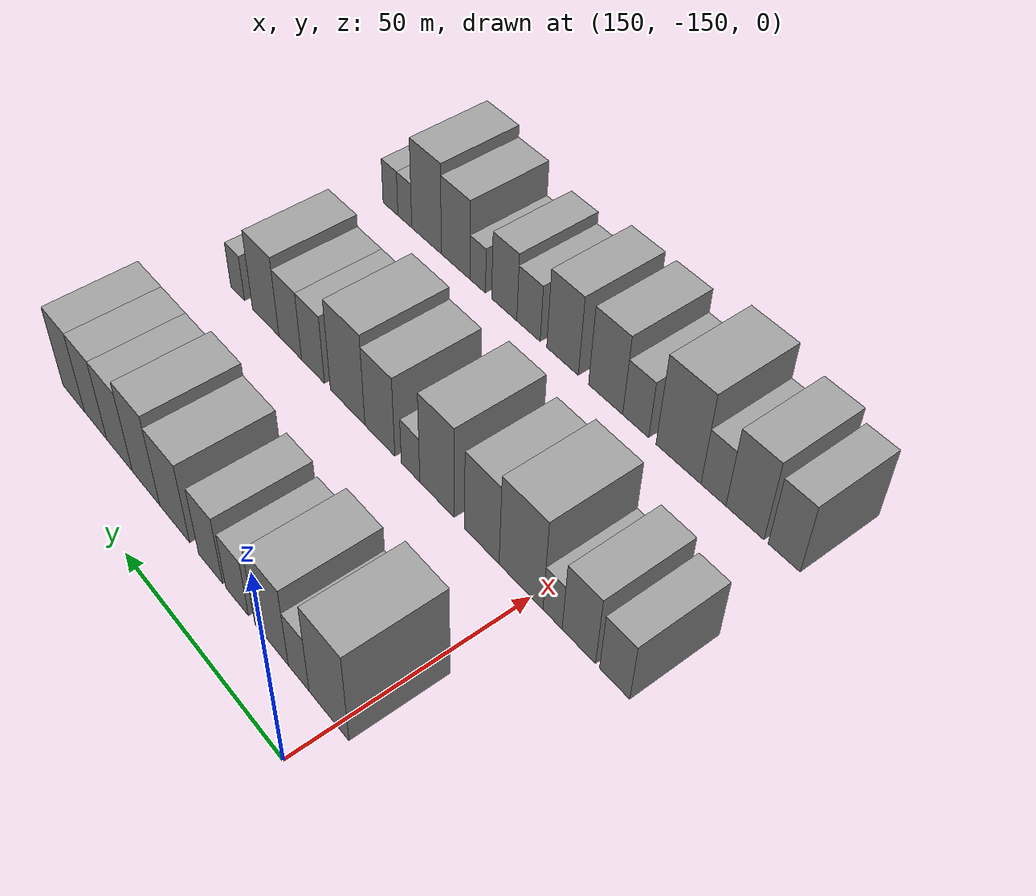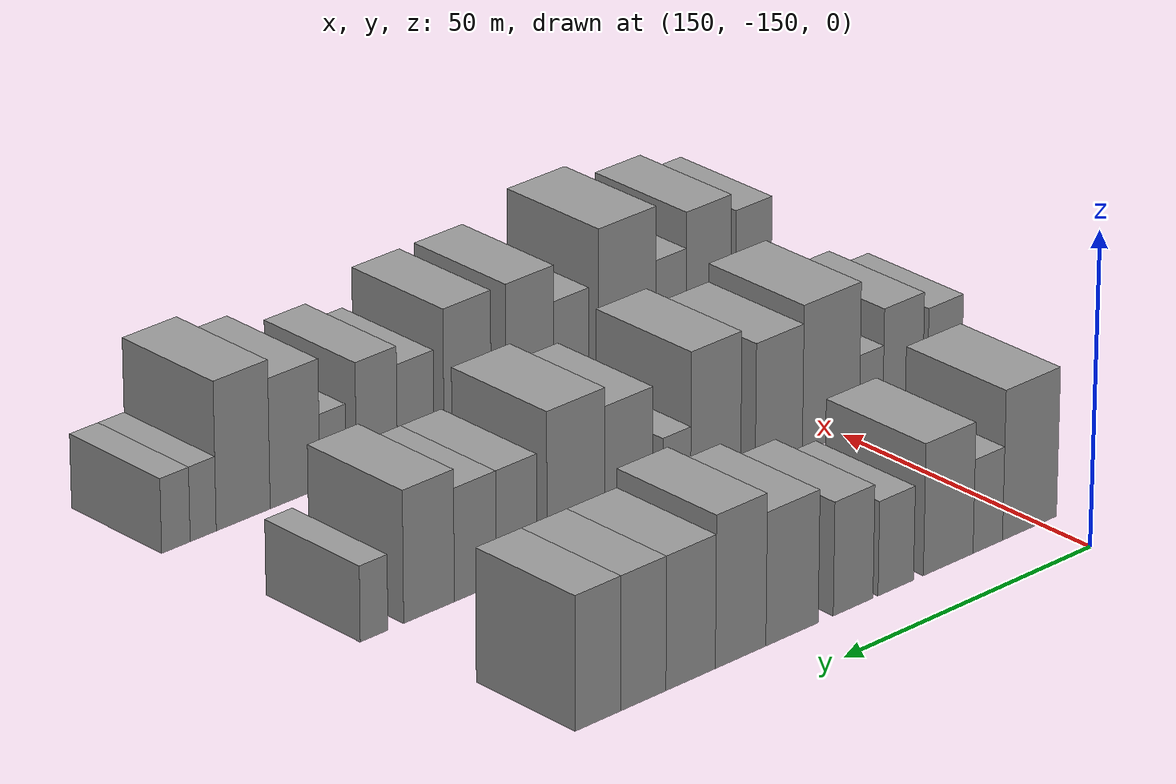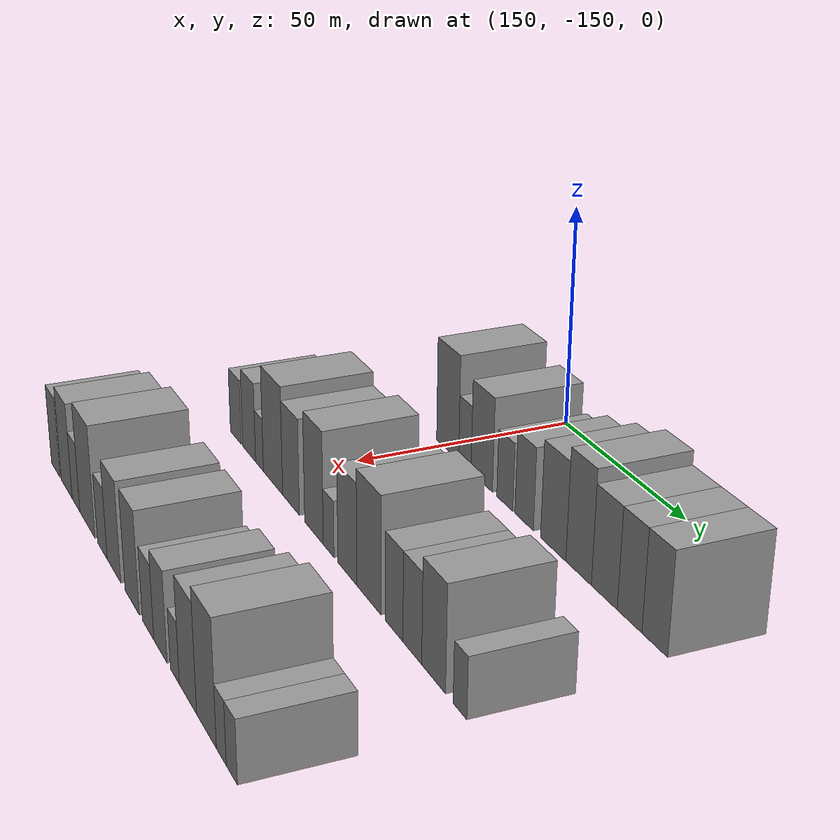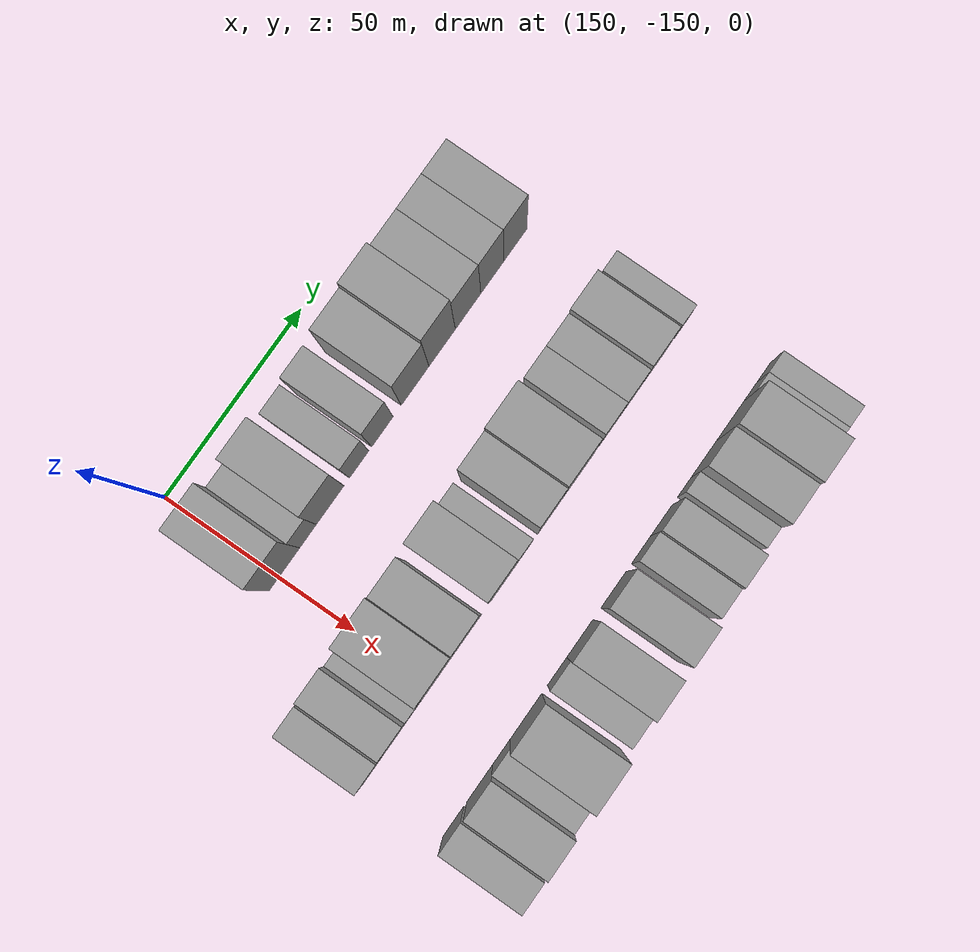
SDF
<sdf version="1.6">
 <world name="default">
  <model name="building_452">
   <static>1</static>
   <pose>170.0000 -147.8271 0 0.000000 0.000000 0.000000</pose>
   <link name="link">
    <pose>0 0 12.00 0 0 0</pose>
    <collision name="collision"><geometry><box><size>20.0000 11.2474 24.0000</size></box></geometry></collision>
    <visual name="visual">
     <cast_shadows>0</cast_shadows>
     <geometry><box><size>20.0000 11.2474 24.0000</size></box></geometry>
     <material>
      <script>
       <uri>model://grey_wall/materials/scripts</uri>
       <uri>model://grey_wall/materials/textures</uri>
       <name>vrc/grey_wall</name>
      </script>
     </material>
    </visual>
   </link>
  </model>
  <model name="building_453">
   <static>1</static>
   <pose>170.0000 -139.1607 0 0.000000 0.000000 0.000000</pose>
   <link name="link">
    <pose>0 0 7.50 0 0 0</pose>
    <collision name="collision"><geometry><box><size>20.0000 6.0854 15.0000</size></box></geometry></collision>
    <visual name="visual">
     <cast_shadows>0</cast_shadows>
     <geometry><box><size>20.0000 6.0854 15.0000</size></box></geometry>
     <material>
      <script>
       <uri>model://grey_wall/materials/scripts</uri>
       <uri>model://grey_wall/materials/textures</uri>
       <name>vrc/grey_wall</name>
      </script>
     </material>
    </visual>
   </link>
  </model>
  <model name="building_454">
   <static>1</static>
   <pose>170.0000 -131.0280 0 0.000000 0.000000 0.000000</pose>
   <link name="link">
    <pose>0 0 10.50 0 0 0</pose>
    <collision name="collision"><geometry><box><size>20.0000 10.1801 21.0000</size></box></geometry></collision>
    <visual name="visual">
     <cast_shadows>0</cast_shadows>
     <geometry><box><size>20.0000 10.1801 21.0000</size></box></geometry>
     <material>
      <script>
       <uri>model://grey_wall/materials/scripts</uri>
       <uri>model://grey_wall/materials/textures</uri>
       <name>vrc/grey_wall</name>
      </script>
     </material>
    </visual>
   </link>
  </model>
  <model name="building_455">
   <static>1</static>
   <pose>170.0000 -120.3381 0 0.000000 0.000000 0.000000</pose>
   <link name="link">
    <pose>0 0 7.50 0 0 0</pose>
    <collision name="collision"><geometry><box><size>20.0000 7.1998 15.0000</size></box></geometry></collision>
    <visual name="visual">
     <cast_shadows>0</cast_shadows>
     <geometry><box><size>20.0000 7.1998 15.0000</size></box></geometry>
     <material>
      <script>
       <uri>model://grey_wall/materials/scripts</uri>
       <uri>model://grey_wall/materials/textures</uri>
       <name>vrc/grey_wall</name>
      </script>
     </material>
    </visual>
   </link>
  </model>
  <model name="building_456">
   <static>1</static>
   <pose>170.0000 -111.7457 0 0.000000 0.000000 0.000000</pose>
   <link name="link">
    <pose>0 0 9.00 0 0 0</pose>
    <collision name="collision"><geometry><box><size>20.0000 7.9849 18.0000</size></box></geometry></collision>
    <visual name="visual">
     <cast_shadows>0</cast_shadows>
     <geometry><box><size>20.0000 7.9849 18.0000</size></box></geometry>
     <material>
      <script>
       <uri>model://grey_wall/materials/scripts</uri>
       <uri>model://grey_wall/materials/textures</uri>
       <name>vrc/grey_wall</name>
      </script>
     </material>
    </visual>
   </link>
  </model>
  <model name="building_457">
   <static>1</static>
   <pose>170.0000 -99.5709 0 0.000000 0.000000 0.000000</pose>
   <link name="link">
    <pose>0 0 10.50 0 0 0</pose>
    <collision name="collision"><geometry><box><size>20.0000 10.3647 21.0000</size></box></geometry></collision>
    <visual name="visual">
     <cast_shadows>0</cast_shadows>
     <geometry><box><size>20.0000 10.3647 21.0000</size></box></geometry>
     <material>
      <script>
       <uri>model://grey_wall/materials/scripts</uri>
       <uri>model://grey_wall/materials/textures</uri>
       <name>vrc/grey_wall</name>
      </script>
     </material>
    </visual>
   </link>
  </model>
  <model name="building_458">
   <static>1</static>
   <pose>170.0000 -89.4409 0 0.000000 0.000000 0.000000</pose>
   <link name="link">
    <pose>0 0 12.00 0 0 0</pose>
    <collision name="collision"><geometry><box><size>20.0000 9.8952 24.0000</size></box></geometry></collision>
    <visual name="visual">
     <cast_shadows>0</cast_shadows>
     <geometry><box><size>20.0000 9.8952 24.0000</size></box></geometry>
     <material>
      <script>
       <uri>model://grey_wall/materials/scripts</uri>
       <uri>model://grey_wall/materials/textures</uri>
       <name>vrc/grey_wall</name>
      </script>
     </material>
    </visual>
   </link>
  </model>
  <model name="building_459">
   <static>1</static>
   <pose>170.0000 -79.7046 0 0.000000 0.000000 0.000000</pose>
   <link name="link">
    <pose>0 0 10.50 0 0 0</pose>
    <collision name="collision"><geometry><box><size>20.0000 9.5773 21.0000</size></box></geometry></collision>
    <visual name="visual">
     <cast_shadows>0</cast_shadows>
     <geometry><box><size>20.0000 9.5773 21.0000</size></box></geometry>
     <material>
      <script>
       <uri>model://grey_wall/materials/scripts</uri>
       <uri>model://grey_wall/materials/textures</uri>
       <name>vrc/grey_wall</name>
      </script>
     </material>
    </visual>
   </link>
  </model>
  <model name="building_460">
   <static>1</static>
   <pose>170.0000 -70.5731 0 0.000000 0.000000 0.000000</pose>
   <link name="link">
    <pose>0 0 10.50 0 0 0</pose>
    <collision name="collision"><geometry><box><size>20.0000 8.6857 21.0000</size></box></geometry></collision>
    <visual name="visual">
     <cast_shadows>0</cast_shadows>
     <geometry><box><size>20.0000 8.6857 21.0000</size></box></geometry>
     <material>
      <script>
       <uri>model://grey_wall/materials/scripts</uri>
       <uri>model://grey_wall/materials/textures</uri>
       <name>vrc/grey_wall</name>
      </script>
     </material>
    </visual>
   </link>
  </model>
  <model name="building_461">
   <static>1</static>
   <pose>170.0000 -61.8903 0 0.000000 0.000000 0.000000</pose>
   <link name="link">
    <pose>0 0 10.50 0 0 0</pose>
    <collision name="collision"><geometry><box><size>20.0000 8.6798 21.0000</size></box></geometry></collision>
    <visual name="visual">
     <cast_shadows>0</cast_shadows>
     <geometry><box><size>20.0000 8.6798 21.0000</size></box></geometry>
     <material>
      <script>
       <uri>model://grey_wall/materials/scripts</uri>
       <uri>model://grey_wall/materials/textures</uri>
       <name>vrc/grey_wall</name>
      </script>
     </material>
    </visual>
   </link>
  </model>
  <model name="building_590">
   <static>1</static>
   <pose>210.0000 -171.2102 0 0.000000 0.000000 0.000000</pose>
   <link name="link">
    <pose>0 0 7.50 0 0 0</pose>
    <collision name="collision"><geometry><box><size>20.0000 7.3509 15.0000</size></box></geometry></collision>
    <visual name="visual">
     <cast_shadows>0</cast_shadows>
     <geometry><box><size>20.0000 7.3509 15.0000</size></box></geometry>
     <material>
      <script>
       <uri>model://grey_wall/materials/scripts</uri>
       <uri>model://grey_wall/materials/textures</uri>
       <name>vrc/grey_wall</name>
      </script>
     </material>
    </visual>
   </link>
  </model>
  <model name="building_591">
   <static>1</static>
   <pose>210.0000 -162.3197 0 0.000000 0.000000 0.000000</pose>
   <link name="link">
    <pose>0 0 9.00 0 0 0</pose>
    <collision name="collision"><geometry><box><size>20.0000 8.4302 18.0000</size></box></geometry></collision>
    <visual name="visual">
     <cast_shadows>0</cast_shadows>
     <geometry><box><size>20.0000 8.4302 18.0000</size></box></geometry>
     <material>
      <script>
       <uri>model://grey_wall/materials/scripts</uri>
       <uri>model://grey_wall/materials/textures</uri>
       <name>vrc/grey_wall</name>
      </script>
     </material>
    </visual>
   </link>
  </model>
  <model name="building_592">
   <static>1</static>
   <pose>210.0000 -155.6208 0 0.000000 0.000000 0.000000</pose>
   <link name="link">
    <pose>0 0 6.00 0 0 0</pose>
    <collision name="collision"><geometry><box><size>20.0000 4.9674 12.0000</size></box></geometry></collision>
    <visual name="visual">
     <cast_shadows>0</cast_shadows>
     <geometry><box><size>20.0000 4.9674 12.0000</size></box></geometry>
     <material>
      <script>
       <uri>model://grey_wall/materials/scripts</uri>
       <uri>model://grey_wall/materials/textures</uri>
       <name>vrc/grey_wall</name>
      </script>
     </material>
    </visual>
   </link>
  </model>
  <model name="building_593">
   <static>1</static>
   <pose>210.0000 -147.2212 0 0.000000 0.000000 0.000000</pose>
   <link name="link">
    <pose>0 0 12.00 0 0 0</pose>
    <collision name="collision"><geometry><box><size>20.0000 11.8319 24.0000</size></box></geometry></collision>
    <visual name="visual">
     <cast_shadows>0</cast_shadows>
     <geometry><box><size>20.0000 11.8319 24.0000</size></box></geometry>
     <material>
      <script>
       <uri>model://grey_wall/materials/scripts</uri>
       <uri>model://grey_wall/materials/textures</uri>
       <name>vrc/grey_wall</name>
      </script>
     </material>
    </visual>
   </link>
  </model>
  <model name="building_594">
   <static>1</static>
   <pose>210.0000 -136.4425 0 0.000000 0.000000 0.000000</pose>
   <link name="link">
    <pose>0 0 10.50 0 0 0</pose>
    <collision name="collision"><geometry><box><size>20.0000 9.7254 21.0000</size></box></geometry></collision>
    <visual name="visual">
     <cast_shadows>0</cast_shadows>
     <geometry><box><size>20.0000 9.7254 21.0000</size></box></geometry>
     <material>
      <script>
       <uri>model://grey_wall/materials/scripts</uri>
       <uri>model://grey_wall/materials/textures</uri>
       <name>vrc/grey_wall</name>
      </script>
     </material>
    </visual>
   </link>
  </model>
  <model name="building_595">
   <static>1</static>
   <pose>210.0000 -123.4891 0 0.000000 0.000000 0.000000</pose>
   <link name="link">
    <pose>0 0 12.00 0 0 0</pose>
    <collision name="collision"><geometry><box><size>20.0000 10.1814 24.0000</size></box></geometry></collision>
    <visual name="visual">
     <cast_shadows>0</cast_shadows>
     <geometry><box><size>20.0000 10.1814 24.0000</size></box></geometry>
     <material>
      <script>
       <uri>model://grey_wall/materials/scripts</uri>
       <uri>model://grey_wall/materials/textures</uri>
       <name>vrc/grey_wall</name>
      </script>
     </material>
    </visual>
   </link>
  </model>
  <model name="building_596">
   <static>1</static>
   <pose>210.0000 -115.5713 0 0.000000 0.000000 0.000000</pose>
   <link name="link">
    <pose>0 0 6.00 0 0 0</pose>
    <collision name="collision"><geometry><box><size>20.0000 5.6543 12.0000</size></box></geometry></collision>
    <visual name="visual">
     <cast_shadows>0</cast_shadows>
     <geometry><box><size>20.0000 5.6543 12.0000</size></box></geometry>
     <material>
      <script>
       <uri>model://grey_wall/materials/scripts</uri>
       <uri>model://grey_wall/materials/textures</uri>
       <name>vrc/grey_wall</name>
      </script>
     </material>
    </visual>
   </link>
  </model>
  <model name="building_597">
   <static>1</static>
   <pose>210.0000 -105.9874 0 0.000000 0.000000 0.000000</pose>
   <link name="link">
    <pose>0 0 10.50 0 0 0</pose>
    <collision name="collision"><geometry><box><size>20.0000 9.5134 21.0000</size></box></geometry></collision>
    <visual name="visual">
     <cast_shadows>0</cast_shadows>
     <geometry><box><size>20.0000 9.5134 21.0000</size></box></geometry>
     <material>
      <script>
       <uri>model://grey_wall/materials/scripts</uri>
       <uri>model://grey_wall/materials/textures</uri>
       <name>vrc/grey_wall</name>
      </script>
     </material>
    </visual>
   </link>
  </model>
  <model name="building_598">
   <static>1</static>
   <pose>210.0000 -95.4999 0 0.000000 0.000000 0.000000</pose>
   <link name="link">
    <pose>0 0 12.00 0 0 0</pose>
    <collision name="collision"><geometry><box><size>20.0000 11.4615 24.0000</size></box></geometry></collision>
    <visual name="visual">
     <cast_shadows>0</cast_shadows>
     <geometry><box><size>20.0000 11.4615 24.0000</size></box></geometry>
     <material>
      <script>
       <uri>model://grey_wall/materials/scripts</uri>
       <uri>model://grey_wall/materials/textures</uri>
       <name>vrc/grey_wall</name>
      </script>
     </material>
    </visual>
   </link>
  </model>
  <model name="building_599">
   <static>1</static>
   <pose>210.0000 -83.8127 0 0.000000 0.000000 0.000000</pose>
   <link name="link">
    <pose>0 0 9.00 0 0 0</pose>
    <collision name="collision"><geometry><box><size>20.0000 7.9128 18.0000</size></box></geometry></collision>
    <visual name="visual">
     <cast_shadows>0</cast_shadows>
     <geometry><box><size>20.0000 7.9128 18.0000</size></box></geometry>
     <material>
      <script>
       <uri>model://grey_wall/materials/scripts</uri>
       <uri>model://grey_wall/materials/textures</uri>
       <name>vrc/grey_wall</name>
      </script>
     </material>
    </visual>
   </link>
  </model>
  <model name="building_600">
   <static>1</static>
   <pose>210.0000 -75.8126 0 0.000000 0.000000 0.000000</pose>
   <link name="link">
    <pose>0 0 9.00 0 0 0</pose>
    <collision name="collision"><geometry><box><size>20.0000 8.0874 18.0000</size></box></geometry></collision>
    <visual name="visual">
     <cast_shadows>0</cast_shadows>
     <geometry><box><size>20.0000 8.0874 18.0000</size></box></geometry>
     <material>
      <script>
       <uri>model://grey_wall/materials/scripts</uri>
       <uri>model://grey_wall/materials/textures</uri>
       <name>vrc/grey_wall</name>
      </script>
     </material>
    </visual>
   </link>
  </model>
  <model name="building_601">
   <static>1</static>
   <pose>210.0000 -66.9092 0 0.000000 0.000000 0.000000</pose>
   <link name="link">
    <pose>0 0 10.50 0 0 0</pose>
    <collision name="collision"><geometry><box><size>20.0000 9.7194 21.0000</size></box></geometry></collision>
    <visual name="visual">
     <cast_shadows>0</cast_shadows>
     <geometry><box><size>20.0000 9.7194 21.0000</size></box></geometry>
     <material>
      <script>
       <uri>model://grey_wall/materials/scripts</uri>
       <uri>model://grey_wall/materials/textures</uri>
       <name>vrc/grey_wall</name>
      </script>
     </material>
    </visual>
   </link>
  </model>
  <model name="building_602">
   <static>1</static>
   <pose>210.0000 -56.4286 0 0.000000 0.000000 0.000000</pose>
   <link name="link">
    <pose>0 0 6.00 0 0 0</pose>
    <collision name="collision"><geometry><box><size>20.0000 5.2417 12.0000</size></box></geometry></collision>
    <visual name="visual">
     <cast_shadows>0</cast_shadows>
     <geometry><box><size>20.0000 5.2417 12.0000</size></box></geometry>
     <material>
      <script>
       <uri>model://grey_wall/materials/scripts</uri>
       <uri>model://grey_wall/materials/textures</uri>
       <name>vrc/grey_wall</name>
      </script>
     </material>
    </visual>
   </link>
  </model>
  <model name="building_729">
   <static>1</static>
   <pose>250.0000 -170.4298 0 0.000000 0.000000 0.000000</pose>
   <link name="link">
    <pose>0 0 9.00 0 0 0</pose>
    <collision name="collision"><geometry><box><size>20.0000 7.6572 18.0000</size></box></geometry></collision>
    <visual name="visual">
     <cast_shadows>0</cast_shadows>
     <geometry><box><size>20.0000 7.6572 18.0000</size></box></geometry>
     <material>
      <script>
       <uri>model://grey_wall/materials/scripts</uri>
       <uri>model://grey_wall/materials/textures</uri>
       <name>vrc/grey_wall</name>
      </script>
     </material>
    </visual>
   </link>
  </model>
  <model name="building_730">
   <static>1</static>
   <pose>250.0000 -160.8787 0 0.000000 0.000000 0.000000</pose>
   <link name="link">
    <pose>0 0 10.50 0 0 0</pose>
    <collision name="collision"><geometry><box><size>20.0000 9.4450 21.0000</size></box></geometry></collision>
    <visual name="visual">
     <cast_shadows>0</cast_shadows>
     <geometry><box><size>20.0000 9.4450 21.0000</size></box></geometry>
     <material>
      <script>
       <uri>model://grey_wall/materials/scripts</uri>
       <uri>model://grey_wall/materials/textures</uri>
       <name>vrc/grey_wall</name>
      </script>
     </material>
    </visual>
   </link>
  </model>
  <model name="building_731">
   <static>1</static>
   <pose>250.0000 -152.9708 0 0.000000 0.000000 0.000000</pose>
   <link name="link">
    <pose>0 0 7.50 0 0 0</pose>
    <collision name="collision"><geometry><box><size>20.0000 6.3707 15.0000</size></box></geometry></collision>
    <visual name="visual">
     <cast_shadows>0</cast_shadows>
     <geometry><box><size>20.0000 6.3707 15.0000</size></box></geometry>
     <material>
      <script>
       <uri>model://grey_wall/materials/scripts</uri>
       <uri>model://grey_wall/materials/textures</uri>
       <name>vrc/grey_wall</name>
      </script>
     </material>
    </visual>
   </link>
  </model>
  <model name="building_732">
   <static>1</static>
   <pose>250.0000 -143.8361 0 0.000000 0.000000 0.000000</pose>
   <link name="link">
    <pose>0 0 12.00 0 0 0</pose>
    <collision name="collision"><geometry><box><size>20.0000 11.8986 24.0000</size></box></geometry></collision>
    <visual name="visual">
     <cast_shadows>0</cast_shadows>
     <geometry><box><size>20.0000 11.8986 24.0000</size></box></geometry>
     <material>
      <script>
       <uri>model://grey_wall/materials/scripts</uri>
       <uri>model://grey_wall/materials/textures</uri>
       <name>vrc/grey_wall</name>
      </script>
     </material>
    </visual>
   </link>
  </model>
  <model name="building_733">
   <static>1</static>
   <pose>250.0000 -132.2836 0 0.000000 0.000000 0.000000</pose>
   <link name="link">
    <pose>0 0 7.50 0 0 0</pose>
    <collision name="collision"><geometry><box><size>20.0000 7.2065 15.0000</size></box></geometry></collision>
    <visual name="visual">
     <cast_shadows>0</cast_shadows>
     <geometry><box><size>20.0000 7.2065 15.0000</size></box></geometry>
     <material>
      <script>
       <uri>model://grey_wall/materials/scripts</uri>
       <uri>model://grey_wall/materials/textures</uri>
       <name>vrc/grey_wall</name>
      </script>
     </material>
    </visual>
   </link>
  </model>
  <model name="building_734">
   <static>1</static>
   <pose>250.0000 -123.7958 0 0.000000 0.000000 0.000000</pose>
   <link name="link">
    <pose>0 0 10.50 0 0 0</pose>
    <collision name="collision"><geometry><box><size>20.0000 9.7691 21.0000</size></box></geometry></collision>
    <visual name="visual">
     <cast_shadows>0</cast_shadows>
     <geometry><box><size>20.0000 9.7691 21.0000</size></box></geometry>
     <material>
      <script>
       <uri>model://grey_wall/materials/scripts</uri>
       <uri>model://grey_wall/materials/textures</uri>
       <name>vrc/grey_wall</name>
      </script>
     </material>
    </visual>
   </link>
  </model>
  <model name="building_735">
   <static>1</static>
   <pose>250.0000 -111.1634 0 0.000000 0.000000 0.000000</pose>
   <link name="link">
    <pose>0 0 10.50 0 0 0</pose>
    <collision name="collision"><geometry><box><size>20.0000 9.4957 21.0000</size></box></geometry></collision>
    <visual name="visual">
     <cast_shadows>0</cast_shadows>
     <geometry><box><size>20.0000 9.4957 21.0000</size></box></geometry>
     <material>
      <script>
       <uri>model://grey_wall/materials/scripts</uri>
       <uri>model://grey_wall/materials/textures</uri>
       <name>vrc/grey_wall</name>
      </script>
     </material>
    </visual>
   </link>
  </model>
  <model name="building_736">
   <static>1</static>
   <pose>250.0000 -100.7705 0 0.000000 0.000000 0.000000</pose>
   <link name="link">
    <pose>0 0 7.50 0 0 0</pose>
    <collision name="collision"><geometry><box><size>20.0000 7.2901 15.0000</size></box></geometry></collision>
    <visual name="visual">
     <cast_shadows>0</cast_shadows>
     <geometry><box><size>20.0000 7.2901 15.0000</size></box></geometry>
     <material>
      <script>
       <uri>model://grey_wall/materials/scripts</uri>
       <uri>model://grey_wall/materials/textures</uri>
       <name>vrc/grey_wall</name>
      </script>
     </material>
    </visual>
   </link>
  </model>
  <model name="building_737">
   <static>1</static>
   <pose>250.0000 -93.0801 0 0.000000 0.000000 0.000000</pose>
   <link name="link">
    <pose>0 0 9.00 0 0 0</pose>
    <collision name="collision"><geometry><box><size>20.0000 8.0907 18.0000</size></box></geometry></collision>
    <visual name="visual">
     <cast_shadows>0</cast_shadows>
     <geometry><box><size>20.0000 8.0907 18.0000</size></box></geometry>
     <material>
      <script>
       <uri>model://grey_wall/materials/scripts</uri>
       <uri>model://grey_wall/materials/textures</uri>
       <name>vrc/grey_wall</name>
      </script>
     </material>
    </visual>
   </link>
  </model>
  <model name="building_738">
   <static>1</static>
   <pose>250.0000 -84.4571 0 0.000000 0.000000 0.000000</pose>
   <link name="link">
    <pose>0 0 6.00 0 0 0</pose>
    <collision name="collision"><geometry><box><size>20.0000 5.1552 12.0000</size></box></geometry></collision>
    <visual name="visual">
     <cast_shadows>0</cast_shadows>
     <geometry><box><size>20.0000 5.1552 12.0000</size></box></geometry>
     <material>
      <script>
       <uri>model://grey_wall/materials/scripts</uri>
       <uri>model://grey_wall/materials/textures</uri>
       <name>vrc/grey_wall</name>
      </script>
     </material>
    </visual>
   </link>
  </model>
  <model name="building_739">
   <static>1</static>
   <pose>250.0000 -77.0464 0 0.000000 0.000000 0.000000</pose>
   <link name="link">
    <pose>0 0 10.50 0 0 0</pose>
    <collision name="collision"><geometry><box><size>20.0000 9.6663 21.0000</size></box></geometry></collision>
    <visual name="visual">
     <cast_shadows>0</cast_shadows>
     <geometry><box><size>20.0000 9.6663 21.0000</size></box></geometry>
     <material>
      <script>
       <uri>model://grey_wall/materials/scripts</uri>
       <uri>model://grey_wall/materials/textures</uri>
       <name>vrc/grey_wall</name>
      </script>
     </material>
    </visual>
   </link>
  </model>
  <model name="building_740">
   <static>1</static>
   <pose>250.0000 -67.0227 0 0.000000 0.000000 0.000000</pose>
   <link name="link">
    <pose>0 0 12.00 0 0 0</pose>
    <collision name="collision"><geometry><box><size>20.0000 10.3810 24.0000</size></box></geometry></collision>
    <visual name="visual">
     <cast_shadows>0</cast_shadows>
     <geometry><box><size>20.0000 10.3810 24.0000</size></box></geometry>
     <material>
      <script>
       <uri>model://grey_wall/materials/scripts</uri>
       <uri>model://grey_wall/materials/textures</uri>
       <name>vrc/grey_wall</name>
      </script>
     </material>
    </visual>
   </link>
  </model>
  <model name="building_741">
   <static>1</static>
   <pose>250.0000 -59.3478 0 0.000000 0.000000 0.000000</pose>
   <link name="link">
    <pose>0 0 6.00 0 0 0</pose>
    <collision name="collision"><geometry><box><size>20.0000 4.9688 12.0000</size></box></geometry></collision>
    <visual name="visual">
     <cast_shadows>0</cast_shadows>
     <geometry><box><size>20.0000 4.9688 12.0000</size></box></geometry>
     <material>
      <script>
       <uri>model://grey_wall/materials/scripts</uri>
       <uri>model://grey_wall/materials/textures</uri>
       <name>vrc/grey_wall</name>
      </script>
     </material>
    </visual>
   </link>
  </model>
  <model name="building_742">
   <static>1</static>
   <pose>250.0000 -54.1566 0 0.000000 0.000000 0.000000</pose>
   <link name="link">
    <pose>0 0 6.00 0 0 0</pose>
    <collision name="collision"><geometry><box><size>20.0000 5.4136 12.0000</size></box></geometry></collision>
    <visual name="visual">
     <cast_shadows>0</cast_shadows>
     <geometry><box><size>20.0000 5.4136 12.0000</size></box></geometry>
     <material>
      <script>
       <uri>model://grey_wall/materials/scripts</uri>
       <uri>model://grey_wall/materials/textures</uri>
       <name>vrc/grey_wall</name>
      </script>
     </material>
    </visual>
   </link>
  </model>
 </world>
</sdf>
